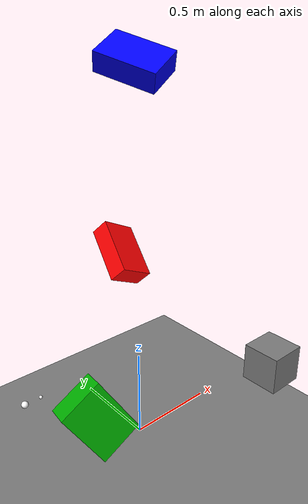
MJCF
<mujoco>
  <visual>
    <scale constraint="0.02"/>
  </visual>

  <worldbody>
    <light pos="0 0 3"/>
    <geom type="plane" size="1 1 .01"/>

    <body name="non-diag inertia" pos="0 0 1" quat="0 0.534522 0.801784 0.267261">
      <freejoint/>
      <geom type="box" size="0.15 0.1 0.05" pos="0.15 0.1 0.05" euler="30 30 30" rgba="1 0 0 1"/>
    </body>

    <body name="diagonal inertia" pos="0 0 2" quat="0 0.534522 0.801784 0.267261">
      <freejoint/>
      <geom type="box" size="0.15 0.1 0.05" rgba="0 0 1 1"/>
    </body>

    <body name="mocap body" pos="-.5 -.5 .5" mocap="true" quat=".1 .2 .3 .4">
      <geom type="box" size="0.15 0.1 0.05" pos="0.15 0.1 0.05" euler="30 30 30" rgba="0 .7 0 1"/>
    </body>

    <body name="small sphere" pos="-0.4 0.4 0.2">
      <freejoint/>
      <geom type="sphere" size="0.01" rgba="1 1 1 1"/>
    </body>

    <body name="heavy sphere" pos="-0.5 0.4 0.2">
      <freejoint/>
      <geom type="sphere" size="0.02" rgba="1 1 1 1" mass="1000"/>
    </body>

    <body name="ball joint" pos=".5 -.5 .5" >
      <joint type="ball" damping="10"/>
      <geom type="box" size="0.1 0.1 0.1"/>
    </body>
  </worldbody>
</mujoco>
